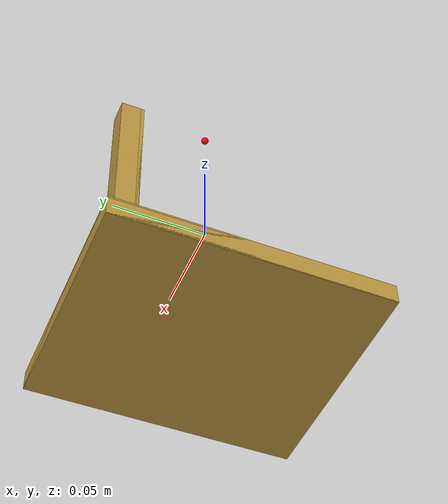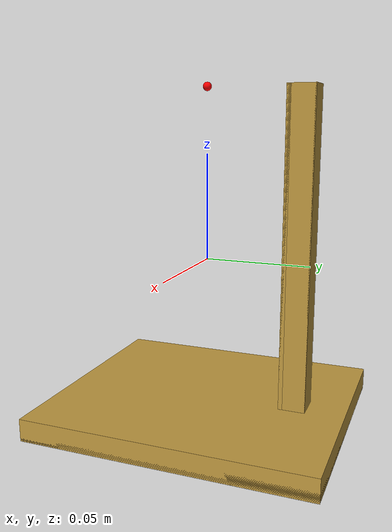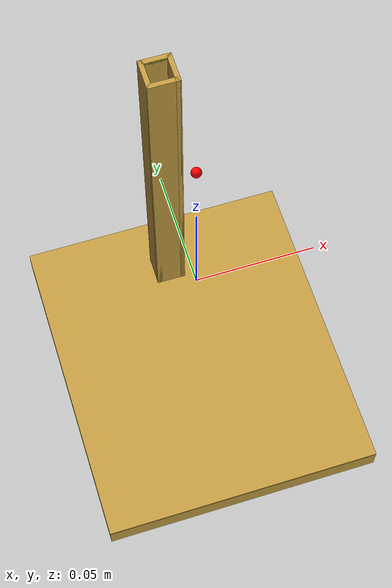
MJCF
<?xml version="1.0" encoding="utf-8"?>
<mujoco model="stand_with_mount_good">
  <compiler angle="radian" coordinate="local"/>
  <option gravity="0 0 -9.81"/>
  <!-- Good rendering defaults: group 0 = collision, group 1 = visual -->
  <default>
    <default class="coll">
      <geom group="0" contype="1" conaffinity="1"/>
    </default>
    <default class="vis">
      <geom group="1" contype="0" conaffinity="0"/>
    </default>
  </default>
  <worldbody>
    <body name="stand">
      <!-- If you load this into robosuite as an XMLObject, you may remove this joint and let robosuite add one -->
      <joint name="stand_freejoint" type="free" damping="0.0005"/>
      <!-- Collision geoms (exact dimensions) -->
      <geom name="stand_base" class="coll" type="box" pos="0 0 -0.075" size="0.06 0.07 0.005"
            rgba="0.75 0.6 0.25 1" density="50000" solref="0.02 1" solimp="0.998 0.998 0.001"/>
      <geom name="stand_wall0" class="coll" type="box" pos="0 0.0395 0.005" quat="0.70710678 0 0 0.70710678"
            size="0.0005 0.006 0.075" rgba="0.75 0.6 0.25 1" density="50000" solref="0.02 1" solimp="0.998 0.998 0.001"/>
      <geom name="stand_wall1" class="coll" type="box" pos="-0.0055 0.045 0.005" quat="1 0 0 0"
            size="0.0005 0.006 0.075" rgba="0.75 0.6 0.25 1" density="50000" solref="0.02 1" solimp="0.998 0.998 0.001"/>
      <geom name="stand_wall2" class="coll" type="box" pos="0 0.0505 0.005" quat="0.70710678 0 0 -0.70710678"
            size="0.0005 0.006 0.075" rgba="0.75 0.6 0.25 1" density="50000" solref="0.02 1" solimp="0.998 0.998 0.001"/>
      <geom name="stand_wall3" class="coll" type="box" pos="0.0055 0.045 0.005" quat="6.123234e-17 0 0 1"
            size="0.0005 0.006 0.075" rgba="0.75 0.6 0.25 1" density="50000" solref="0.02 1" solimp="0.998 0.998 0.001"/>
      <!-- Visual duplicates (slightly inflated so thin walls look stable) -->
      <geom name="stand_base_visual" class="vis" type="box" pos="0 0 -0.0745" size="0.06 0.07 0.0055"
            rgba="0.75 0.6 0.25 1"/>
      <geom name="stand_wall0_visual" class="vis" type="box" pos="0 0.0395 0.0055" quat="0.70710678 0 0 0.70710678"
            size="0.001 0.0065 0.075" rgba="0.75 0.6 0.25 1"/>
      <geom name="stand_wall1_visual" class="vis" type="box" pos="-0.0055 0.045 0.0055" quat="1 0 0 0"
            size="0.001 0.0065 0.075" rgba="0.75 0.6 0.25 1"/>
      <geom name="stand_wall2_visual" class="vis" type="box" pos="0 0.0505 0.0055" quat="0.70710678 0 0 -0.70710678"
            size="0.001 0.0065 0.075" rgba="0.75 0.6 0.25 1"/>
      <geom name="stand_wall3_visual" class="vis" type="box" pos="0.0055 0.045 0.0055" quat="6.123234e-17 0 0 1"
            size="0.001 0.0065 0.075" rgba="0.75 0.6 0.25 1"/>
      <geom name="stand_rim_x_pos" type="box" pos="0 0.05025 0.07925" size="0.006 0.00075 0.00075"
            rgba="0 1 0 0.35" group="1" contype="0" conaffinity="0"/>
      <geom name="stand_rim_x_neg" type="box" pos="0 0.03975 0.07925" size="0.006 0.00075 0.00075"
            rgba="0 1 0 0.35" group="1" contype="0" conaffinity="0"/>
      <geom name="stand_rim_y_pos" type="box" pos="0.00525 0.045 0.07925" size="0.00075 0.006 0.00075"
            rgba="0 1 0 0.35" group="1" contype="0" conaffinity="0"/>
      <geom name="stand_rim_y_neg" type="box" pos="-0.00525 0.045 0.07925" size="0.00075 0.006 0.00075"
            rgba="0 1 0 0.35" group="1" contype="0" conaffinity="0"/>
      <site name="stand_mount_site" pos="0 0 0.08" size="0.002" rgba="1 0 0 1" type="sphere"/>
    </body>
  </worldbody>
</mujoco>
